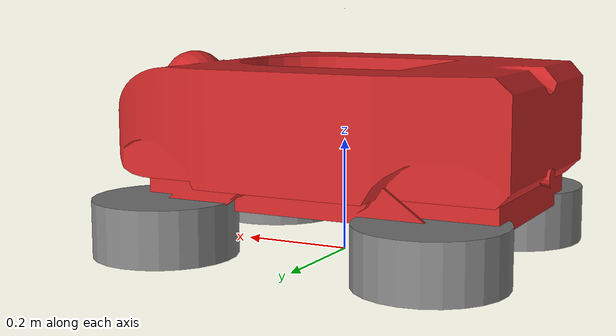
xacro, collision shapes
<?xml version="1.0"?>
<robot name="summit_xl" xmlns:xacro="http://www.ros.org/wiki/xacro">

  <!-- Import all Gazebo-customization elements, including Gazebo colors -->
  <xacro:include filename="$(find summit_xl_description)/urdf/deprecated/x_wam.gazebo" />

  <!-- Constants for robot dimensions -->
  <xacro:property name="PI" value="3.1415926535897931"/>
  <!-- xacro:property name="wheel_offset_x" value="0.261" / -->    <!-- x,y,z in base_footprint CS -->
  <xacro:property name="wheel_offset_x" value="0.249" />    <!-- x,y,z in base_footprint CS -->
  <xacro:property name="wheel_offset_y" value="0.200" />
  <xacro:property name="wheel_offset_z" value="-0.092" />
  <xacro:property name="steer_joint_damping" value="2.0" />
  <xacro:property name="steer_joint_friction" value="1.0" />
  <xacro:property name="steer_joint_effort_limit" value="5.0" />
  <xacro:property name="steer_joint_velocity_limit" value="5.0" />
  <xacro:property name="steer_mechanical_reduction" value="100.0"/>

  <xacro:property name="wheel_joint_damping" value="1.0" />
  <xacro:property name="wheel_joint_friction" value="100.0" />
  <xacro:property name="wheel_joint_effort_limit" value="100.0" />
  <xacro:property name="wheel_joint_velocity_limit" value="0.1" />
  <xacro:property name="wheel_mechanical_reduction" value="15.0" />

  <!-- WAM Parameters -->
  <xacro:property name="joint_damping" value="100.0" />
  <xacro:property name="joint_friction" value="0.0" />
  <xacro:property name="joint_effort_limit" value="30.0" />
  <xacro:property name="joint_velocity_limit" value="2.0" />
  <xacro:property name="mechanical_reduction" value="1.0" />

  <!-- Used for fixing robot to Gazebo 'base_link' -->

  <!-- BASE FOOTPRINT -->
  <!-- base_footprint is a fictitious link(frame) that is on the ground right below base_link origin,
             navigation stack depends on this frame -->
  <link name="base_footprint">

      <visual>
          <origin xyz="0 0 0" rpy="0 0 0" />
          <geometry>
             <box size="0.001 0.001 0.001" />
          </geometry>
      </visual>

      <collision>
          <origin xyz="0 0 0" rpy="0 0 0" />
          <geometry>
            <box size="0.001 0.001 0.001" />
         </geometry>
     </collision>
  </link>

  <joint name="base_footprint_joint" type="fixed">
     <!--NB: While you would think this would make it go up, it is oddly reversed.
      This moves the joint to 0,0,0 where we want it for rviz, etc. -->
     <!-- origin xyz="0 0 0.075" rpy="0 0 0" / -->
     <origin xyz="0 0 0.150" rpy="0 0 0" />
     <parent link="base_footprint"/>
     <child link="base_link" />
  </joint>

  <!-- BASE_LINK (RED) -->
  <link name="base_link">

    <inertial>
      <mass value="40.0" />
      <origin xyz="0 0 0" />
      <inertia  ixx="1.0" ixy="0.0"  ixz="0.0"  iyy="1.0"  iyz="0.0"  izz="1.0" />
    </inertial>

    <visual>
       <origin xyz="0 0 0" rpy="0 0 0" />
       <geometry>
	   <mesh filename="package://summit_xl_description/meshes/x_wam/chassis_xwam_down.dae"/>
       </geometry>
    </visual>
    <collision>
       <origin xyz="0 0 0" rpy="0 0 0 " />
       <geometry>
       <mesh filename="package://summit_xl_description/meshes/x_wam/chassis_xwam_down.dae"/>
       </geometry>
    </collision>
  </link>

   <!-- BACK LEFT WHEEL (GREY) -->
  <link name="back_left_wheel">
    <inertial>
      <mass value="1.250" />
      <origin xyz="0 0 0" />
      <inertia  ixx="0.0109375" ixy="0.0"  ixz="0.0"  iyy="0.021125"  iyz="0.0"  izz="0.0109375" />
    </inertial>
    <visual>
       <origin xyz="0 0 0" rpy="0 0 0" />
       <geometry>
	    <!-- mesh filename="package://summit_xl_description/meshes/summit_xl_wheel.dae" scale="1.0 1.0 1.0"/ -->
	    <mesh filename="package://summit_xl_description/meshes/mecanum_wheel_2.dae" scale="1.0 1.0 1.0"/>
       </geometry>
	<material name="grey">
	   <color rgba="0.5 0.5 0.5 1"/>
       </material>
    </visual>
    <collision>
       <origin xyz="0 0 0" rpy="0 0 0" />
       <geometry>
	    <!-- mesh filename="package://summit_xl_description/meshes/mecanum_left_simp_1.dae" scale="1.0 1.0 1.0"/ -->
        <cylinder radius="0.127" length="0.1"/>
       </geometry>
    </collision>
  </link>

  <joint name="joint_back_left_wheel" type="continuous">
    <parent link="base_link"/>
    <child link="back_left_wheel"/>
    <origin xyz="-${wheel_offset_x} ${wheel_offset_y} ${wheel_offset_z}" rpy="0 0 0" />
    <axis xyz="0 1 0" rpy="0 0 0" />
    <limit effort="${wheel_joint_effort_limit}" velocity="${wheel_joint_velocity_limit}"/>
    <joint_properties damping="${wheel_joint_damping}" friction="{wheel_joint_friction}"/>
  </joint>

  <transmission name="joint_blw_trans">
	 <type>transmission_interface/SimpleTransmission</type>
     <joint name="joint_back_left_wheel" />
     <actuator name="joint_blw_motor">
	    <hardwareInterface>EffortJointInterface</hardwareInterface>
        <mechanicalReduction>${wheel_mechanical_reduction}</mechanicalReduction>
     </actuator>
  </transmission>

  <!-- BACK RIGHT WHEEL (GREY) -->
  <link name="back_right_wheel">
    <inertial>
      <mass value="1.250" />
      <origin xyz="0 0 0" />
      <inertia  ixx="0.0109375" ixy="0.0"  ixz="0.0"  iyy="0.021125"  iyz="0.0"  izz="0.0109375" />
    </inertial>
    <visual>
       <origin xyz="0 0 0" rpy="0 0 0" />
       <geometry>
	 <mesh filename="package://summit_xl_description/meshes/mecanum_wheel_1.dae" scale="1.0 1.0 1.0"/>
       </geometry>
	<material name="grey">
	   <color rgba="0.5 0.5 0.5 1"/>
       </material>
    </visual>
    <collision>
       <origin xyz="0 0 0" rpy="0 0 0" />
       <geometry>
	     <!-- mesh filename="package://summit_xl_description/meshes/mecanum_left_simp_1.dae" scale="1.0 1.0 1.0"/ -->
         <cylinder radius="0.127" length="0.1"/>
       </geometry>
    </collision>
  </link>

  <joint name="joint_back_right_wheel" type="continuous">
    <parent link="base_link"/>
    <child link="back_right_wheel"/>
    <origin xyz="-${wheel_offset_x} -${wheel_offset_y} ${wheel_offset_z}" rpy="0 0 3.1416" />
    <axis xyz="0 1 0" rpy="0 0 0" />
    <limit effort="${wheel_joint_effort_limit}" velocity="${wheel_joint_velocity_limit}"/>
    <joint_properties damping="${wheel_joint_damping}" friction="{wheel_joint_friction}"/>
  </joint>

  <transmission name="joint_brw_trans">
    <type>transmission_interface/SimpleTransmission</type>
    <joint name="joint_back_right_wheel" />
    <actuator name="joint_brw_motor">
	   <hardwareInterface>EffortJointInterface</hardwareInterface>
       <mechanicalReduction>${wheel_mechanical_reduction}</mechanicalReduction>
    </actuator>
  </transmission>

  <!-- FRONT LEFT WHEEL (GREY) -->
  <link name="front_left_wheel">
    <inertial>
      <mass value="1.250" />
      <origin xyz="0 0 0" />
      <inertia  ixx="0.0109375" ixy="0.0"  ixz="0.0"  iyy="0.021125"  iyz="0.0"  izz="0.0109375" />
    </inertial>
    <visual>
       <origin xyz="0 0 0" rpy="0 0 0" />
       <geometry>
		<mesh filename="package://summit_xl_description/meshes/mecanum_wheel_1.dae" scale="1.0 1.0 1.0"/>
       </geometry>
	<material name="grey">
		<color rgba="0.5 0.5 0.5 1"/>
      	</material>
    </visual>
    <collision>
       <origin xyz="0 0 0" rpy="0 0 0" />
       <geometry>
		 <!-- mesh filename="package://summit_xl_description/meshes/mecanum_left_simp_1.dae" scale="1.0 1.0 1.0"/ -->
         <cylinder radius="0.127" length="0.1"/>
       </geometry>
    </collision>
  </link>

  <joint name="joint_front_left_wheel" type="continuous">
    <parent link="base_link"/>
    <child link="front_left_wheel"/>
    <origin xyz="${wheel_offset_x} ${wheel_offset_y} ${wheel_offset_z}" rpy="0 0 0" />
    <axis xyz="0 1 0" rpy="0 0 0" />
    <limit effort="${wheel_joint_effort_limit}" velocity="${wheel_joint_velocity_limit}"/>
    <joint_properties damping="${wheel_joint_damping}" friction="{wheel_joint_friction}"/>
  </joint>

  <transmission name="joint_flw_trans">
	 <type>transmission_interface/SimpleTransmission</type>
     <joint name="joint_front_left_wheel" />
     <actuator name="joint_flw_motor">
	   <hardwareInterface>EffortJointInterface</hardwareInterface>
       <mechanicalReduction>${wheel_mechanical_reduction}</mechanicalReduction>
     </actuator>
  </transmission>

  <!-- FRONT RIGHT WHEEL (GREY) -->
  <link name="front_right_wheel">
    <inertial>
      <mass value="1.250" />
      <origin xyz="0 0 0" />
      <inertia  ixx="0.0109375" ixy="0.0"  ixz="0.0"  iyy="0.021125"  iyz="0.0"  izz="0.0109375" />
    </inertial>
    <visual>
       <origin xyz="0 0 0" rpy="0 0 0" />
       <geometry>
		 <mesh filename="package://summit_xl_description/meshes/mecanum_wheel_2.dae" scale="1.0 1.0 1.0"/>
         <!-- cylinder radius="0.125" length="0.1"/ -->
       </geometry>
	<material name="grey">
		<color rgba="0.5 0.5 0.5 1"/>
      	</material>
    </visual>
    <collision>
       <origin xyz="0 0 0" rpy="0 0 0" />
       <geometry>
	     <!-- mesh filename="package://summit_xl_description/meshes/mecanum_left_simp_1.dae" scale="1.0 1.0 1.0"/ -->
         <cylinder radius="0.127" length="0.1"/>
       </geometry>
    </collision>
  </link>

  <joint name="joint_front_right_wheel" type="continuous">
    <parent link="base_link"/>
    <child link="front_right_wheel"/>
    <origin xyz="${wheel_offset_x} -${wheel_offset_y} ${wheel_offset_z}" rpy="0 0 3.1416" />
    <axis xyz="0 1 0" rpy="0 0 0" />
    <limit effort="${wheel_joint_effort_limit}" velocity="${wheel_joint_velocity_limit}"/>
    <joint_properties damping="${wheel_joint_damping}" friction="{wheel_joint_friction}"/>
  </joint>

  <transmission name="joint_frw_trans">
	 <type>transmission_interface/SimpleTransmission</type>
     <joint name="joint_front_right_wheel" />
     <actuator name="joint_frw_motor">
	   <hardwareInterface>EffortJointInterface</hardwareInterface>
       <mechanicalReduction>${wheel_mechanical_reduction}</mechanicalReduction>
     </actuator>
  </transmission>

  <!-- IMU SENSOR -->
  <joint name="imu_joint" type="fixed">
      <axis xyz="1 0 0"/>
      <origin xyz="0 0 0.2825"/>
      <parent link="base_link"/>
      <child link="imu_link"/>
  </joint>

  <link name="imu_link">
      <inertial>
        <mass value="0.001"/>
        <origin rpy="0 0 0" xyz="0 0 0"/>
        <inertia ixx="0.0001" ixy="0" ixz="0" iyy="0.000001" iyz="0" izz="0.0001"/>
      </inertial>
      <visual>
        <origin rpy="0 0 0" xyz="0 0 0"/>
        <geometry>
          <box size="0.001 0.001 0.001"/>
        </geometry>
      </visual>
      <collision>
        <origin rpy="0 0 0" xyz="0 0 0"/>
        <geometry>
          <box size=".001 .001 .001"/>
        </geometry>
      </collision>
  </link>

  <!-- SCISSOR MECHANISM PART 1      -->
  <!-- lower="-3.1416" upper="-2.28"/ -->
  <!-- mimic joint="scissor_prismatic_joint" multiplier="1.72" offset="-3.14" / -->

  <!-- ROVER PART - UP SCISSOR MECH  -->
  <link name="rover_link">
    <inertial>
      <mass value="20.0" />
      <origin xyz="0 0 0" />
      <inertia  ixx="0.2185" ixy="0.0"  ixz="-0.001"  iyy="0.33677"  iyz="0.0"  izz="0.20511" />
    </inertial>
    <visual>
       <origin xyz="0 0 0" rpy="0 0 0" />
       <geometry>
	   <mesh filename="package://summit_xl_description/meshes/x_wam/chassis_xwam_up.dae"/>
       </geometry>
    </visual>
    <collision>
       <origin xyz="0 0 0" rpy="0 0 0 " />
       <geometry>
       <mesh filename="package://summit_xl_description/meshes/x_wam/chassis_xwam_up.dae"/>
       </geometry>
    </collision>
  </link>

  <joint name="scissor_prismatic_joint" type="prismatic">
    <parent link="base_link"/>
    <child link="rover_link"/>
    <limit effort="1000.0" velocity="0.25" lower="0.0" upper="0.500"/>
    <origin rpy="0 0 0" xyz="0.261 0 -0.038"/>
    <axis xyz="0 0 1"/>
  </joint>

  <transmission name="joint_scissor_trans">
	 <type>transmission_interface/SimpleTransmission</type>
     <joint name="scissor_prismatic_joint" />
     <actuator name="scissor_motor">
		<hardwareInterface>EffortJointInterface</hardwareInterface>
		<mechanicalReduction>100.0</mechanicalReduction>
	 </actuator>
  </transmission>

  <!-- HOKUYO SENSOR - ATTACHED TO ROVER PART - UP  -->
  <joint name="hokuyo_laser_joint" type="fixed">
     <axis xyz="0 1 0" />
     <origin xyz="0.075 0 0.02" rpy="3.1416 0.0 0.0"/>
     <parent link="rover_link"/>
     <child link="hokuyo_laser_link"/>
  </joint>
  <link name="hokuyo_laser_link" type="laser">
     <inertial>
       <mass value="0.001" />
       <origin xyz="0 0 0" rpy="0 0 0" />
       <inertia ixx="0.0001" ixy="0" ixz="0" iyy="0.000001" iyz="0" izz="0.0001" />
    </inertial>
  </link>

  <!-- This adds a visual box to allow us to see the Hokuyo in rviz/gazebo -->
  <joint name="hokuyo_laser_box_joint" type="fixed">
    <origin xyz="0 0 0" rpy="0 0 0" />
    <parent link="hokuyo_laser_link" />
    <child link="hokuyo_laser_box_link"/>
  </joint>
  <link name="hokuyo_laser_box_link">
    <inertial>
      <mass value="0.01" />
      <origin xyz="0 0 0" />
      <inertia ixx="0.001"  ixy="0.0"  ixz="0.0"
               iyy="0.001"  iyz="0.0"
               izz="0.001" />
    </inertial>
    <visual>
      <origin xyz="0 0 0" rpy="0 0 0"/>
      <geometry>
        <!--box size="0.05 0.05 0.1" /-->
	<mesh filename="package://summit_xl_description/meshes/hokuyo-utm30-lx.dae" scale="1.0 1.0 1.0"/>
      </geometry>
    </visual>
    <collision>
      <origin xyz="0 0 0" rpy="0 0 0"/>
      <geometry>
        <box size="0.05 0.05 0.1" />
      </geometry>
    </collision>
  </link>

  <!-- SCISSOR MECHANISM PART 2      -->
  <!-- lower="-0.86" upper="0.0" / -->

  <!-- AXIS PTZ CAMERA -->
  <joint name="camera_joint" type="fixed">
     <axis xyz="0 1 0" />
     <!-- FRONT MOUNT -->
     <origin xyz="0.3 0.0 0.25"/>
     <parent link="base_link"/>
     <child link="camera_link"/>
  </joint>
  <link name="camera_link">
     <inertial>
       <mass value="0.001" />
       <origin xyz="0 0 0" rpy="0 0 0" />
       <inertia ixx="0.0001" ixy="0" ixz="0" iyy="0.000001" iyz="0" izz="0.0001" />
    </inertial>
  </link>

  <!-- Import Barrett WAM robot xacro file description -->
  <!--xacro:include filename="$(find wam_description)/urdf/wam_arm.urdf.xacro" /-->
  <!-- xacro:include filename="$(find wam_description)/urdf/wam_arm_hand.urdf.xacro" / -->

</robot>
